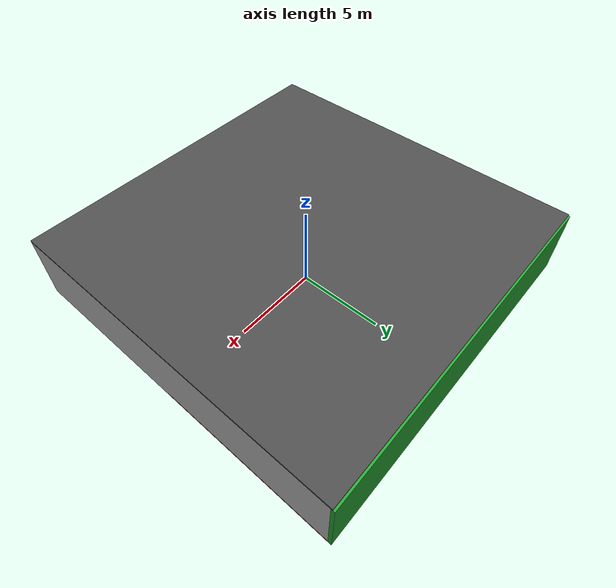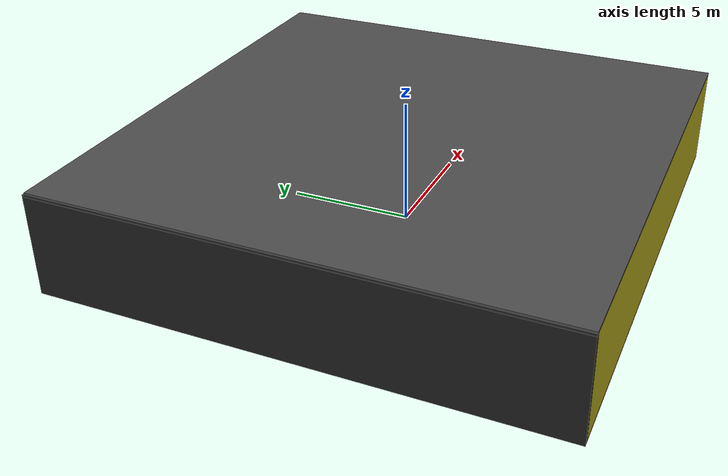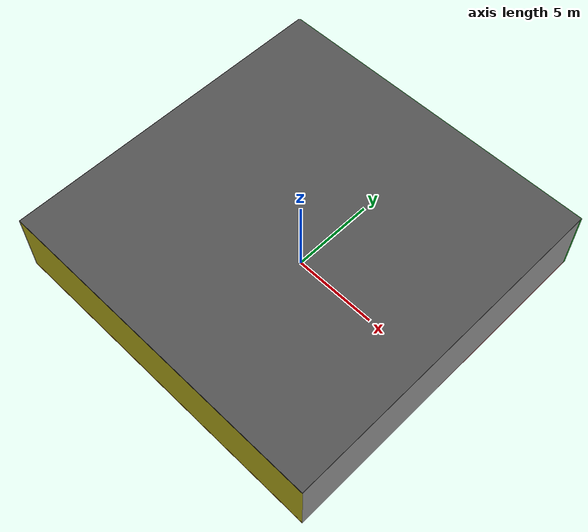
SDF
<sdf version="1.4">
 <world name="default">
  <physics type="ode">
   <max_step_size>0.001</max_step_size>
   <real_time_factor>1</real_time_factor>
   <real_time_update_rate>1000</real_time_update_rate>
   <gravity>0 0 -9.8</gravity>
  </physics>
  <scene><ambient>0.4 0.4 0.4 1</ambient><background>0.7 0.7 0.7 1</background><shadows>1</shadows></scene>
  <model name="Surrounding">
   <static>1</static>
   <link name="Ceiling">
    <collision name="Ceiling_Collision"><geometry><box><size>20 20 0.1</size></box></geometry></collision>
    <visual name="Ceiling_Visual">
     <geometry><box><size>20 20 0.1</size></box></geometry>
     <material>
      <script><uri>file://media/materials/scripts/gazebo.material</uri><name>Gazebo/Road</name></script>
     </material>
    </visual>
    <pose>0 0 4.05 0 0 0</pose>
   </link>
   <link name="Wall_South">
    <collision name="Wall_South_Collision">
     <geometry><box><size>20 0 4</size></box></geometry>
     <pose>0 0 2 0 -0 0</pose>
    </collision>
    <visual name="Wall_South_Visual">
     <pose>0 0 2 0 -0 0</pose>
     <geometry><box><size>20 0 4</size></box></geometry>
     <material>
      <script><uri>file://media/materials/scripts/gazebo.material</uri><name>Gazebo/YellowGlow</name></script>
     </material>
    </visual>
    <velocity_decay><linear>0</linear><angular>0</angular></velocity_decay>
    <pose>0 -10 0 0 -0 0</pose>
   </link>
   <link name="Wall_East">
    <collision name="Wall_21_Collision">
     <geometry><box><size>20 0 4</size></box></geometry>
     <pose>0 0 2 0 -0 0</pose>
    </collision>
    <visual name="Wall_21_Visual">
     <pose>0 0 2 0 -0 0</pose>
     <geometry><box><size>20 0 4</size></box></geometry>
     <material>
      <script><uri>file://media/materials/scripts/gazebo.material</uri><name>Gazebo/JointAnchor</name></script>
     </material>
    </visual>
    <velocity_decay><linear>0</linear><angular>0</angular></velocity_decay>
    <pose>10 0 0 0 -0 1.5708</pose>
   </link>
   <link name="Wall_North">
    <collision name="Wall_22_Collision">
     <geometry><box><size>20 0.2 4</size></box></geometry>
     <pose>0 0 2 0 -0 0</pose>
    </collision>
    <visual name="Wall_22_Visual">
     <pose>0 0 2 0 -0 0</pose>
     <geometry><box><size>20 0.2 4</size></box></geometry>
     <material>
      <script><uri>file://media/materials/scripts/gazebo.material</uri><name>Gazebo/Green</name></script>
     </material>
    </visual>
    <velocity_decay><linear>0</linear><angular>0</angular></velocity_decay>
    <pose>0 10 0 0 -0 0</pose>
   </link>
   <link name="Wall_West">
    <collision name="Wall_23_Collision">
     <geometry><box><size>20 0.2 4</size></box></geometry>
     <pose>0 0 2 0 -0 0</pose>
    </collision>
    <visual name="Wall_23_Visual">
     <pose>0 0 2 0 -0 0</pose>
     <geometry><box><size>20 0.2 4</size></box></geometry>
     <material>
      <script><uri>file://media/materials/scripts/gazebo.material</uri><name>Gazebo/FlatBlack</name></script>
     </material>
    </visual>
    <velocity_decay><linear>0</linear><angular>0</angular></velocity_decay>
    <pose>-10 0 0 0 0 -1.5708</pose>
   </link>
   <link name="Ground_link">
    <collision name="collision">
     <pose>0 0 .05 0 -0 0</pose>
     <geometry><box><size>20 20 0.1</size></box></geometry>
    </collision>
    <visual name="visual">
     <pose>0 0 .05 0 -0 0</pose>
     <geometry><box><size>20 20 0.1</size></box></geometry>
     <material>
      <script><uri>file://media/materials/scripts/gazebo.material</uri><name>Gazebo/RedTransparent</name></script>
     </material>
    </visual>
   </link>
   <static>1</static>
  </model>
  <spherical_coordinates>
   <surface_model>EARTH_WGS84</surface_model>
   <latitude_deg>0</latitude_deg>
   <longitude_deg>0</longitude_deg>
   <elevation>0</elevation>
   <heading_deg>0</heading_deg>
  </spherical_coordinates>
  <light name="lightball_0" type="diffuse">
   <diffuse>0.8 0.8 0.8 1</diffuse>
   <specular>0.2 0.2 0.2 1</specular>
   <attenuation>
    <range>100</range>
    <constant>0.7</constant>
    <linear>0.01</linear>
    <quadratic>0.001</quadratic>
   </attenuation>
   <direction>-0.5 0.1 -0.9</direction>
   <pose>1.31242873839 3.16358823658 0.926372304935 0 0 0</pose>
  </light>
  <light name="lightball_1" type="diffuse">
   <diffuse>0.8 0.8 0.8 1</diffuse>
   <specular>0.2 0.2 0.2 1</specular>
   <attenuation>
    <range>100</range>
    <constant>0.7</constant>
    <linear>0.01</linear>
    <quadratic>0.001</quadratic>
   </attenuation>
   <direction>-0.5 0.1 -0.9</direction>
   <pose>7.20513776858 5.57736816686 2.84768429216 0 0 0</pose>
  </light>
  <light name="lightball_2" type="diffuse">
   <diffuse>0.8 0.8 0.8 1</diffuse>
   <specular>0.2 0.2 0.2 1</specular>
   <attenuation>
    <range>100</range>
    <constant>0.7</constant>
    <linear>0.01</linear>
    <quadratic>0.001</quadratic>
   </attenuation>
   <direction>-0.5 0.1 -0.9</direction>
   <pose>-9.68262890456 3.23710253525 2.97197731851 0 0 0</pose>
  </light>
  <include>
   <uri>model://robocup_3Dsim_goal</uri>
   <pose>-6.96209183651 2.61049742958 0 0 0 0.439669554411</pose>
  </include>
  <include>
   <uri>model://textured_shapes</uri>
   <pose>1.34109781013 6.8648519736 0 0 0 0.00802117789559</pose>
  </include>
  <include>
   <uri>model://construction_cone</uri>
   <pose>3.41097973399 -4.2378181152 0 0 0 2.15467015864</pose>
  </include>
  <include>
   <uri>model://construction_cone</uri>
   <pose>7.31318093208 -4.6244397676 0 0 0 1.30543566207</pose>
  </include>
  <include>
   <uri>model://textured_shapes</uri>
   <pose>7.23761397236 3.69813533097 0 0 0 2.70442698758</pose>
  </include>
 </world>
</sdf>

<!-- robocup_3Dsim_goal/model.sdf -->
<sdf version="1.5">
  <model name="robocup_3d_goal">
    <static>true</static>
    <link name="left_post">
      <pose>0 1.05 0.45 0 0 0</pose>
      <collision name="collision">
        <geometry>
          <cylinder>
            <radius>0.05</radius>
            <length>0.9</length>
          </cylinder>
        </geometry>
      </collision>
      <visual name="visual">
        <geometry>
          <cylinder>
            <radius>0.05</radius>
            <length>0.9</length>
          </cylinder>
        </geometry>
        <material>
          <script>
            <uri>file://media/materials/scripts/gazebo.material</uri>
            <name>Gazebo/ZincYellow</name>
          </script>
        </material>
      </visual>
    </link>
    <link name="left_support_horiz_lower">
      <pose>0.30 1.05 0.01 0 0 0</pose>
      <collision name="collision">
        <geometry>
          <box>
            <size>0.50 0.02 0.02</size>
          </box>
        </geometry>
      </collision>
      <visual name="visual">
        <geometry>
          <box>
            <size>0.50 0.02 0.02</size>
          </box>
        </geometry>
        <material>
          <script>
            <uri>file://media/materials/scripts/gazebo.material</uri>
            <name>Gazebo/White</name>
          </script>
        </material>
      </visual>
    </link>
    <link name="left_support_horiz_upper">
      <pose>0.30 1.05 0.79 0 0 0</pose>
      <collision name="collision">
        <geometry>
          <box>
            <size>0.50 0.02 0.02</size>
          </box>
        </geometry>
      </collision>
      <visual name="visual">
        <geometry>
          <box>
            <size>0.50 0.02 0.02</size>
          </box>
        </geometry>
        <material>
          <script>
            <uri>file://media/materials/scripts/gazebo.material</uri>
            <name>Gazebo/White</name>
          </script>
        </material>
      </visual>
    </link>
    <link name="left_support_vertical">
      <pose>0.56 1.05 0.4 0 1.5708 0</pose>
      <collision name="collision">
        <geometry>
          <box>
            <size>0.80 0.02 0.02</size>
          </box>
        </geometry>
      </collision>
      <visual name="visual">
        <geometry>
          <box>
            <size>0.80 0.02 0.02</size>
          </box>
        </geometry>
        <material>
          <script>
            <uri>file://media/materials/scripts/gazebo.material</uri>
            <name>Gazebo/White</name>
          </script>
        </material>
      </visual>
    </link>
    <link name="right_support_horiz_lower">
      <pose>0.30 -1.05 0.01 0 0 0</pose>
      <collision name="collision">
        <geometry>
          <box>
            <size>0.50 0.02 0.02</size>
          </box>
        </geometry>
      </collision>
      <visual name="visual">
        <geometry>
          <box>
            <size>0.50 0.02 0.02</size>
          </box>
        </geometry>
        <material>
          <script>
            <uri>file://media/materials/scripts/gazebo.material</uri>
            <name>Gazebo/White</name>
          </script>
        </material>
      </visual>
    </link>
    <link name="right_support_horiz_upper">
      <pose>0.30 -1.05 0.79 0 0 0</pose>
      <collision name="collision">
        <geometry>
          <box>
            <size>0.50 0.02 0.02</size>
          </box>
        </geometry>
      </collision>
      <visual name="visual">
        <geometry>
          <box>
            <size>0.50 0.02 0.02</size>
          </box>
        </geometry>
        <material>
          <script>
            <uri>file://media/materials/scripts/gazebo.material</uri>
            <name>Gazebo/White</name>
          </script>
        </material>
      </visual>
    </link>
    <link name="right_support_vertical">
      <pose>0.56 -1.05 0.4 0 1.5708 0</pose>
      <collision name="collision">
        <geometry>
          <box>
            <size>0.80 0.02 0.02</size>
          </box>
        </geometry>
      </collision>
      <visual name="visual">
        <geometry>
          <box>
            <size>0.80 0.02 0.02</size>
          </box>
        </geometry>
        <material>
          <script>
            <uri>file://media/materials/scripts/gazebo.material</uri>
            <name>Gazebo/White</name>
          </script>
        </material>
      </visual>
    </link>
    <link name="center_support_horiz_lower">
      <pose>0.56 0 0.01 0 1.5708 0</pose>
      <collision name="collision">
        <geometry>
          <box>
            <size>0.02 2.08 0.02</size>
          </box>
        </geometry>
      </collision>
      <visual name="visual">
        <geometry>
          <box>
            <size>0.02 2.08 0.02</size>
          </box>
        </geometry>
        <material>
          <script>
            <uri>file://media/materials/scripts/gazebo.material</uri>
            <name>Gazebo/White</name>
          </script>
        </material>
      </visual>
    </link>
    <link name="center_support_horiz_upper">
      <pose>0.56 0 0.79 0 1.5708 0</pose>
      <collision name="collision">
        <geometry>
          <box>
            <size>0.02 2.08 0.02</size>
          </box>
        </geometry>
      </collision>
      <visual name="visual">
        <geometry>
          <box>
            <size>0.02 2.08 0.02</size>
          </box>
        </geometry>
        <material>
          <script>
            <uri>file://media/materials/scripts/gazebo.material</uri>
            <name>Gazebo/White</name>
          </script>
        </material>
      </visual>
    </link>
    <link name="right_post">
      <pose>0 -1.05 0.45 0 0 0</pose>
      <collision name="collision">
        <geometry>
          <cylinder>
            <radius>0.05</radius>
            <length>0.9</length>
          </cylinder>
        </geometry>
      </collision>
      <visual name="visual">
        <geometry>
          <cylinder>
            <radius>0.05</radius>
            <length>0.9</length>
          </cylinder>
        </geometry>
        <material>
          <script>
            <uri>file://media/materials/scripts/gazebo.material</uri>
            <name>Gazebo/ZincYellow</name>
          </script>
        </material>
      </visual>
    </link>
    <link name="crossbar">
      <pose>0 0 0.85 1.57 1.57 0</pose>
      <collision name="collision">
        <geometry>
          <cylinder>
            <radius>0.05</radius>
            <length>2.0</length>
          </cylinder>
        </geometry>
      </collision>
      <visual name="visual">
        <geometry>
          <cylinder>
            <radius>0.05</radius>
            <length>2.0</length>
          </cylinder>
        </geometry>
        <material>
          <script>
            <uri>file://media/materials/scripts/gazebo.material</uri>
            <name>Gazebo/ZincYellow</name>
          </script>
        </material>
      </visual>
    </link>
    <link name="center_net">
      <pose>0.56 0 0.40 0 0 0</pose>
      <collision name="collision">
        <geometry>
          <box>
            <size>0.01 2.1 0.80</size>
          </box>
        </geometry>
      </collision>
      <visual name="visual">
        <geometry>
          <box>
            <size>0.01 2.1 0.80</size>
          </box>
        </geometry>
        <material>
          <script>
            <uri>model://../model_source/models/robocup09_spl_field/materials/scripts/</uri>
            <uri>model://../model_source/models/robocup09_spl_field/materials/textures/</uri>
            <name>RoboCup/Net</name>
          </script>
        </material>
      </visual>
    </link>
    <link name="left_net">
      <pose>0.30 1.05 0.40 0 0 0</pose>
      <collision name="collision">
        <geometry>
          <box>
            <size>0.50 0.01 0.76</size>
          </box>
        </geometry>
      </collision>
      <visual name="visual">
        <geometry>
          <box>
            <size>0.50 0.01 0.76</size>
          </box>
        </geometry>
        <material>
          <script>
            <uri>model://../model_source/models/robocup09_spl_field/materials/scripts/</uri>
            <uri>model://../model_source/models/robocup09_spl_field/materials/textures/</uri>
            <name>RoboCup/Net</name>
          </script>
        </material>
      </visual>
    </link>
    <link name="right_net">
      <pose>0.30 -1.05 0.40 0 0 0</pose>
      <collision name="collision">
        <geometry>
          <box>
            <size>0.50 0.01 0.76</size>
          </box>
        </geometry>
      </collision>
      <visual name="visual">
        <geometry>
          <box>
            <size>0.50 0.01 0.76</size>
          </box>
        </geometry>
        <material>
          <script>
            <uri>model://../model_source/models/robocup09_spl_field/materials/scripts/</uri>
            <uri>model://../model_source/models/robocup09_spl_field/materials/textures/</uri>
            <name>RoboCup/Net</name>
          </script>
        </material>
      </visual>
    </link>
  </model>
</sdf>

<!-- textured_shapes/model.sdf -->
<sdf version="1.6">
  <model name="textured_shapes">
    <pose>0 0 0.5 0 0 0</pose>
    <link name="box">
      <pose>0 -1.5 0 0 0 0</pose>
      <collision name="collision">
        <geometry>
          <box>
            <size>1 1 1</size>
          </box>
        </geometry>
      </collision>
      <visual name="visual">
        <geometry>
          <box>
            <size>1 1 1</size>
          </box>
        </geometry>
        <material>
          <script>
            <uri>model://../model_source/models/textured_shapes/materials/scripts</uri>
            <uri>model://../model_source/models/textured_shapes/materials/textures</uri>
            <name>TexturedShape/Squares</name>
          </script>
        </material>
      </visual>
    </link>
    <link name="sphere">
      <collision name="collision">
        <geometry>
          <sphere>
            <radius>0.5</radius>
          </sphere>
        </geometry>
      </collision>
      <visual name="visual">
        <geometry>
          <sphere>
            <radius>0.5</radius>
          </sphere>
        </geometry>
        <material>
          <script>
            <uri>model://../model_source/models/textured_shapes/materials/scripts</uri>
            <uri>model://../model_source/models/textured_shapes/materials/textures</uri>
            <name>TexturedShape/Squares</name>
          </script>
        </material>
      </visual>
    </link>
    <link name="cylinder">
      <pose>0 1.5 0 0 0 0</pose>
      <collision name="collision">
        <geometry>
          <cylinder>
            <radius>0.5</radius>
            <length>1</length>
          </cylinder>
        </geometry>
      </collision>
      <visual name="visual">
        <geometry>
          <cylinder>
            <radius>0.5</radius>
            <length>1</length>
          </cylinder>
        </geometry>
        <material>
          <script>
            <uri>model://../model_source/models/textured_shapes/materials/scripts</uri>
            <uri>model://../model_source/models/textured_shapes/materials/textures</uri>
            <name>TexturedShape/Squares</name>
          </script>
        </material>
      </visual>
    </link>
  </model>
</sdf>

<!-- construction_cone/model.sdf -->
<sdf version="1.5">
  <model name="Construction Cone">
    <link name="link">
      <collision name="collision">
        <geometry>
          <mesh>
            <scale>10 10 10</scale>
            <uri>file://isr-testbed/construction_cone/meshes/construction_cone.dae</uri>
          </mesh>
        </geometry>
      </collision>
      <visual name="visual">
        <geometry>
          <mesh>
            <scale>10 10 10</scale>
            <uri>file://isr-testbed/construction_cone/meshes/construction_cone.dae</uri>
          </mesh>
        </geometry>
      </visual>
    </link>
  </model>
</sdf>
